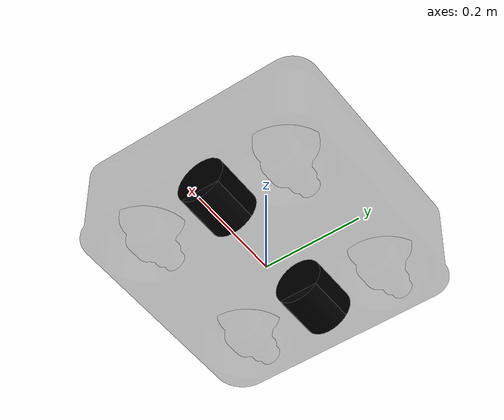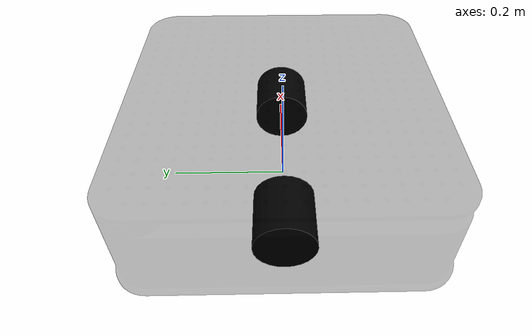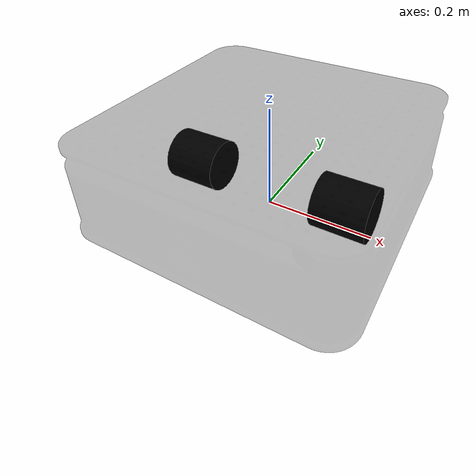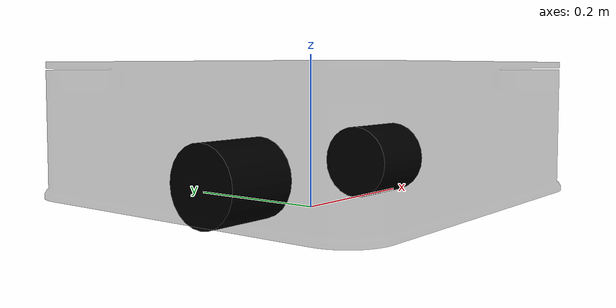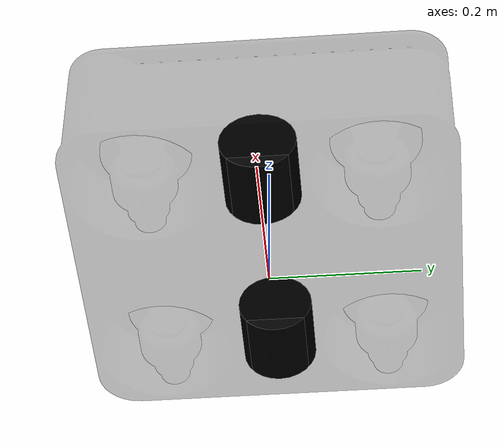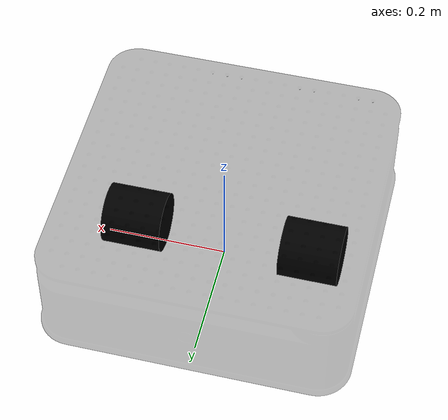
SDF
<?xml version="1.0" ?>
<sdf version="1.7">

  <model name='Ummannd_Car'>
  <static>false</static>

  <link name='car'>

    <inertial>
      <mass>15</mass>
      <inertia>
        <ixx>0.126164</ixx>
        <ixy>0</ixy>
        <ixz>0</ixz>
        <iyy>0.416519</iyy>
        <iyz>0</iyz>
        <izz>0.481014</izz>
        </inertia>
    </inertial>

    <pose>0 0 0.02 0 0 0</pose>

    <collision name='car_collision'>

      <geometry>
        <mesh>
          <uri>model://first_model/meshes/body.dae</uri>
          <scale>1 1 1</scale>
        </mesh>
      </geometry>

    </collision>

    <visual name='car_visual'>

      <geometry>
        <mesh>
          <uri>model://first_model/meshes/body.dae</uri>
          <scale>1 1 1</scale>
        </mesh>
      </geometry>

      <material>
        <ambient>0 0 0 0.1</ambient>
        <diffuse>0 0 0 0.3</diffuse>
        <specular>0 0 0 0</specular>
        <emissive>0 0 0 0</emissive>
      </material>

    </visual>

  </link>

  <link name='back_left_wheel'>

    <inertial>
      <mass>1</mass>
      <inertia>
        <ixx>0.145833</ixx>
        <ixy>0</ixy>
        <ixz>0</ixz>
        <iyy>0.145833</iyy>
        <iyz>0</iyz>
        <izz>0.125</izz>
      </inertia>
    </inertial>

    <collision name='back_left_wheel_collision'>

      <pose>-0.15 -0.15 0 0 0 1.5708</pose>

      <geometry>
        <mesh>
          <uri>model://first_model/meshes/wheel.dae</uri>
          <scale>1 1 1</scale>>
        </mesh>
      </geometry>

    <surface>

      <friction>
        <ode>
          <mu>1</mu>
          <mu2>1</mu2>
          <slip1>0</slip1>
          <slip2>0</slip2>
        </ode>
      </friction>

      <contact>
        <ode>
          <soft_cfm>0</soft_cfm>
          <soft_erp>0.2</soft_erp>
          <kp>1e+13</kp>
          <kd>1</kd>
          <max_vel>0.01</max_vel>
          <min_depth>0.01</min_depth>
        </ode>
      </contact>

    </surface>

    </collision>

    <visual name='back_left_visual'>

      <pose>-0.15 -0.15 0 0 0 1.5708</pose>

      <geometry>
        <mesh>
          <uri>model://first_model/meshes/wheel.dae</uri>
          <scale>1 1 1</scale>>
        </mesh>
      </geometry>

      <material>
        <ambient>0 0 0 1</ambient>
        <diffuse>0 0 0 0.3</diffuse>
        <specular>0 0 0 0.3</specular>
        <emissive>0.3 0 0 0.3</emissive>
      </material>

    </visual>
  </link>

  <link name='back_right_wheel'>

    <inertial>
      <mass>1</mass>
      <inertia>
        <ixx>0.145833</ixx>
        <ixy>0</ixy>
        <ixz>0</ixz>
        <iyy>0.145833</iyy>
        <iyz>0</iyz>
        <izz>0.125</izz>
      </inertia>
    </inertial>

    <collision name='back_right_wheel_collision'>

      <pose>0.15 -0.15 0 0 0 1.5708</pose>

      <geometry>
        <mesh>
          <uri>model://first_model/meshes/wheel.dae</uri>
          <scale>1 1 1</scale>>
        </mesh>
      </geometry>

      <surface>

        <friction>
          <ode>
            <mu>1</mu>
            <mu2>1</mu2>
            <slip1>0</slip1>
            <slip2>0</slip2>
          </ode>
        </friction>

        <contact>
          <ode>
            <soft_cfm>0</soft_cfm>
            <soft_erp>0.2</soft_erp>
            <kp>1e+13</kp>
            <kd>1</kd>
            <max_vel>0.01</max_vel>
            <min_depth>0.01</min_depth>
          </ode>
        </contact>

      </surface>

    </collision>

    <visual name='back_right_visual'>

      <pose>0.15 -0.15 0 0 0 1.5708</pose>

      <geometry>
        <mesh>
          <uri>model://first_model/meshes/wheel.dae</uri>
          <scale>1 1 1</scale>>
        </mesh>
      </geometry>

      <material>
        <ambient>0 0 0 1</ambient>
        <diffuse>0 0 0 0.3</diffuse>
        <specular>0 0 0 0.3</specular>
        <emissive>0.3 0 0 0.3</emissive>
      </material>

    </visual>

  </link>

  <link name='front_left_wheel'>

    <inertial>
      <mass>1</mass>
      <inertia>
        <ixx>0.145833</ixx>
        <ixy>0</ixy>
        <ixz>0</ixz>
        <iyy>0.145833</iyy>
        <iyz>0</iyz>
        <izz>0.125</izz>
      </inertia>
    </inertial>

    <collision name='front_left_wheel_collision'>

      <pose>-0.15 0.15 0 0 0 1.5708</pose>

      <geometry>
        <mesh>
          <uri>model://first_model/meshes/wheel.dae</uri>
          <scale>1 1 1</scale>>
        </mesh>
      </geometry>

      <surface>

        <friction>
          <ode>
            <mu>1</mu>
            <mu2>1</mu2>
            <slip1>0</slip1>
            <slip2>0</slip2>
          </ode>
        </friction>

        <contact>
          <ode>
            <soft_cfm>0</soft_cfm>
            <soft_erp>0.2</soft_erp>
            <kp>1e+13</kp>
            <kd>1</kd>
            <max_vel>0.01</max_vel>
            <min_depth>0.01</min_depth>
          </ode>
        </contact>

      </surface>

    </collision>

    <visual name='front_left_visual'>

      <pose>-0.15 0.15 0 0 0 1.5708</pose>

      <geometry>
        <mesh>
          <uri>model://first_model/meshes/wheel.dae</uri>
          <scale>1 1 1</scale>>
        </mesh>
      </geometry>

      <material>
        <ambient>0 0 0 1</ambient>
        <diffuse>0 0 0 0.3</diffuse>
        <specular>0 0 0 0.3</specular>
        <emissive>0.3 0 0 0.3</emissive>
      </material>

    </visual>

  </link>

  <link name='front_right_wheel'>

    <inertial>
      <mass>1</mass>
      <inertia>
        <ixx>0.145833</ixx>
        <ixy>0</ixy>
        <ixz>0</ixz>
        <iyy>0.145833</iyy>
        <iyz>0</iyz>
        <izz>0.125</izz>
      </inertia>
    </inertial>

    <collision name='front_right_wheel_collision'>

      <pose>0.15 0.15 0 0 0 1.5708</pose>

      <geometry>
        <mesh>
          <uri>model://first_model/meshes/wheel.dae</uri>
          <scale>1 1 1</scale>>
        </mesh>
      </geometry>

      <surface>

        <friction>
          <ode>
            <mu>1</mu>
            <mu2>1</mu2>
            <slip1>0</slip1>
            <slip2>0</slip2>
          </ode>
        </friction>

        <contact>
          <ode>
            <soft_cfm>0</soft_cfm>
            <soft_erp>0.2</soft_erp>
            <kp>1e+13</kp>
            <kd>1</kd>
            <max_vel>0.01</max_vel>
            <min_depth>0.01</min_depth>
          </ode>
        </contact>

      </surface>

    </collision>

    <visual name='front_right_visual'>

      <pose>0.15 0.15 0 0 0 1.5708</pose>

      <geometry>
        <mesh>
          <uri>model://first_model/meshes/wheel.dae</uri>
          <scale>1 1 1</scale>>
        </mesh>
      </geometry>

      <material>
        <ambient>0 0 0 1</ambient>
        <diffuse>0 0 0 0.3</diffuse>
        <specular>0 0 0 0.3</specular>
        <emissive>0.3 0 0 0.3</emissive>
      </material>

    </visual>

  </link>

  <!-- Rotate link -->
  <link name='rotate_left_wheel'>

    <pose>-0.15 0 0.05 0 1.5708 0</pose>

    <inertial>
      <mass>1</mass>
      <inertia>
        <ixx>0.145833</ixx>
        <ixy>0</ixy>
        <ixz>0</ixz>
        <iyy>0.145833</iyy>
        <iyz>0</iyz>
        <izz>0.125</izz>
      </inertia>
    </inertial>

    <collision name='rotate_left__wheel_collision'>

      <geometry>
        <cylinder>
          <radius>0.05</radius>
          <length>0.1</length>
        </cylinder>
      </geometry>

      <surface>

        <friction>
          <ode>
            <mu>1</mu>
            <mu2>1</mu2>
            <slip1>0</slip1>
            <slip2>0</slip2>
          </ode>
        </friction>

        <contact>
          <ode>
            <soft_cfm>0</soft_cfm>
            <soft_erp>0.2</soft_erp>
            <kp>1e+13</kp>
            <kd>1</kd>
            <max_vel>0.05</max_vel>
            <min_depth>0.01</min_depth>
          </ode>
        </contact>

      </surface>

    </collision>

    <visual name='rotate_left_wheel_visual'>

      <geometry>
        <cylinder>
          <radius>0.05</radius>
          <length>0.1</length>
        </cylinder>
      </geometry>

      <material>
        <ambient>0 0 0 0</ambient>
        <diffuse>0 0 0 0</diffuse>
        <specular>0 0 0 0</specular>
        <emissive>0 0 0 0</emissive>
      </material>

    </visual>

  </link>

  <link name='rotate_right_wheel'>

    <pose>0.15 0 0.05 0 1.5708 0</pose>

    <inertial>
      <mass>1</mass>
      <inertia>
        <ixx>0.145833</ixx>
        <ixy>0</ixy>
        <ixz>0</ixz>
        <iyy>0.145833</iyy>
        <iyz>0</iyz>
        <izz>0.125</izz>
      </inertia>
    </inertial>

    <collision name='rotate_right__wheel_collision'>

      <geometry>
        <cylinder>
          <radius>0.05</radius>
          <length>0.1</length>
        </cylinder>
      </geometry>

      <surface>

        <friction>
          <ode>
            <mu>1</mu>
            <mu2>1</mu2>
            <slip1>0</slip1>
            <slip2>0</slip2>
          </ode>
        </friction>

        <contact>
          <ode>
            <soft_cfm>0</soft_cfm>
            <soft_erp>0.2</soft_erp>
            <kp>1e+13</kp>
            <kd>1</kd>
            <max_vel>0.01</max_vel>
            <min_depth>0.01</min_depth>
          </ode>
        </contact>

      </surface>

    </collision>

    <visual name='rotate_right_wheel_visual'>

      <geometry>
        <cylinder>
          <radius>0.05</radius>
          <length>0.1</length>
        </cylinder>
      </geometry>

      <material>
        <ambient>0 0 0 0</ambient>
        <diffuse>0 0 0 0</diffuse>
        <specular>0 0 0 0</specular>
        <emissive>0 0 0 0</emissive>
      </material>

    </visual>

  </link>

  <joint name='back_left_wheel_joint' type='fixed'>

    <parent>car</parent>
    <child>back_left_wheel</child>
    <pose>0 0 0 0 0 0</pose>

  </joint>

  <joint name='back_right_wheel_joint' type='fixed'>

    <parent>car</parent>
    <child>back_right_wheel</child>
    <pose>0 0 0 0 0 0</pose>

  </joint>

  <joint name='front_left_wheel_joint' type='fixed'>

    <parent>car</parent>
    <child>front_left_wheel</child>
    <pose>0 0 0 0 0 0</pose>

  </joint>

  <joint name='front_right_wheel_joint' type='fixed'>

    <parent>car</parent>
    <child>front_right_wheel</child>
    <pose>0 0 0 0 0 0</pose>

  </joint>

  <joint name='rotate_left_wheel_joint' type='revolute'>

    <parent>car</parent>
    <child>rotate_left_wheel</child>
    <pose>0 0 0 0 0 0</pose>

    <axis>
      <xyz>0 0 1</xyz>
      <limit>
        <lower>-1.79769e+308</lower>
        <upper>1.79769e+308</upper>
      </limit>
    </axis>

  </joint>

  <joint name='rotate_right_wheel_joint' type='revolute'>

    <parent>car</parent>
    <child>rotate_right_wheel</child>
    <pose>0 0 0 0 0 0</pose>

    <axis>
      <xyz>0 0 1</xyz>
      <limit>
        <lower>-1.79769e+308</lower>
        <upper>1.79769e+308</upper>
      </limit>
    </axis>

  </joint>

  <plugin name="wheel_drive_controller" filename="libgazebo_ros_diff_drive.so">

    <!-- ROS topic -->
    <ros>

      <namespace>/demo_car</namespace>
      <remapping>cmd_vel:=cmd_vel</remapping>
      <remapping>odom:=odom_demo</remapping>

    </ros>

    <!-- Wheel pair of car -->
    <num_wheel_pairs>1</num_wheel_pairs>
    <left_joint>rotate_left_wheel_joint</left_joint>
    <right_joint>rotate_right_wheel_joint</right_joint>

    <!-- Wheel diameter & separation -->
    <wheel_separation>0.3</wheel_separation>
    <wheel_diameter>0.08</wheel_diameter>

    <!-- Dynamics -->
    <max_wheel_torque>20.0</max_wheel_torque>
    <max_wheel_acceleration>10.0</max_wheel_acceleration>

    <publish_odom>true</publish_odom>
    <publish_odom_tf>true</publish_odom_tf>
    <publish_wheel_tf>true</publish_wheel_tf>

    <update_rate>500</update_rate>

    <!-- Frame -->
    <odometry_frame>odom_demo</odometry_frame>
    <robot_base_frame>car</robot_base_frame>

  </plugin>

  </model>
</sdf>
